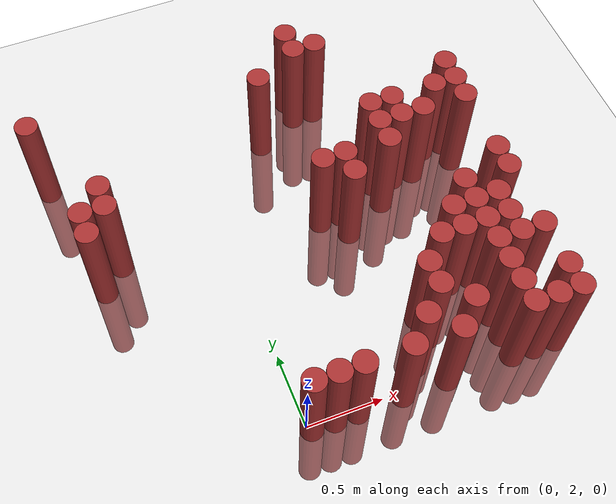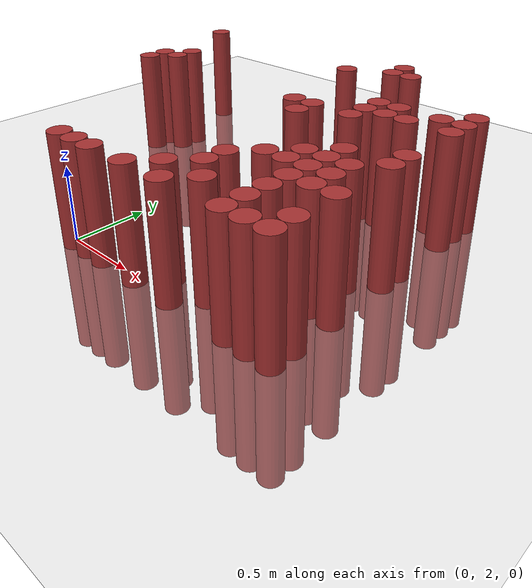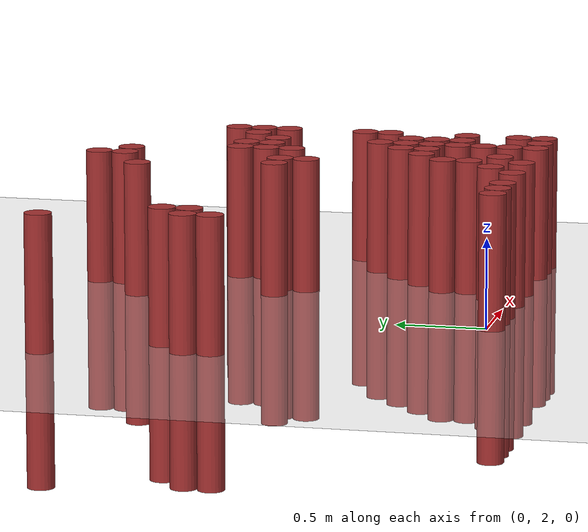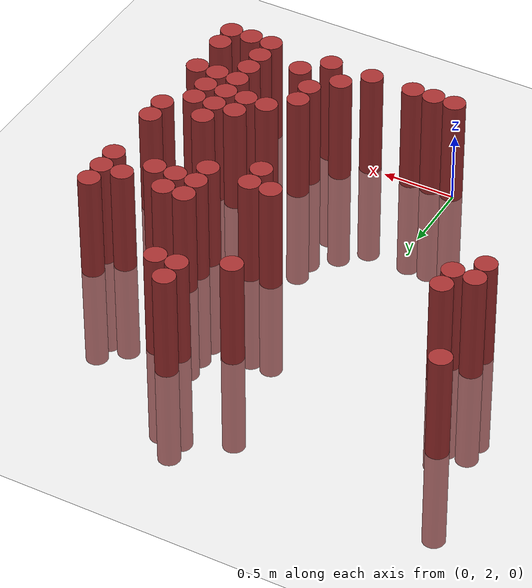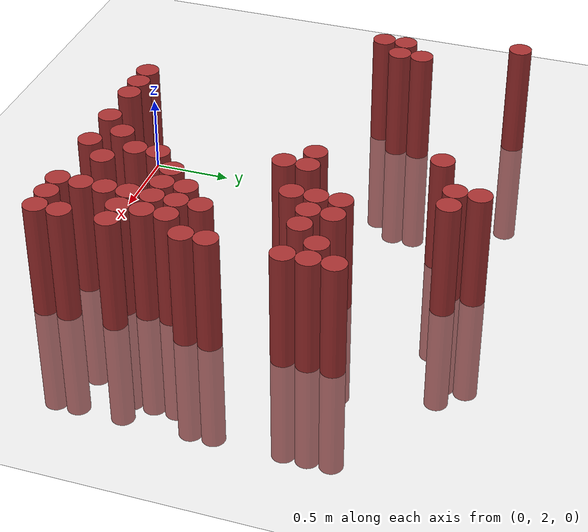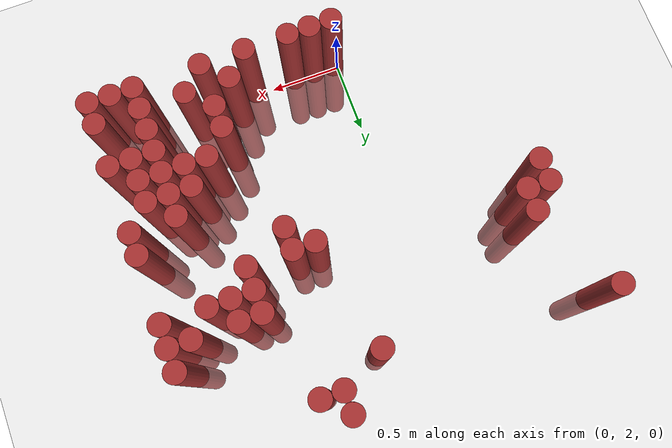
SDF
<sdf version="1.6">
 <world name="default">
  <model name="ground_plane">
   <static>1</static>
   <link name="link">
    <collision name="collision">
     <geometry><plane><normal>0 0 1</normal><size>100 100</size></plane></geometry>
     <surface><friction><ode><mu>100</mu><mu2>50</mu2></ode></friction></surface>
    </collision>
    <visual name="visual">
     <cast_shadows>0</cast_shadows>
     <geometry><plane><normal>0 0 1</normal><size>100 100</size></plane></geometry>
     <material>
      <script><uri>file://media/materials/scripts/gazebo.material</uri><name>Gazebo/Grey</name></script>
     </material>
    </visual>
   </link>
  </model>
  <model name="unit_cylinder_161">
   <static>1</static>
   <pose>-1.025000 4.225000 0.000000 0.000000 0.000000 0.000000</pose>
   <link name="link">
    <inertial>
     <mass>1</mass>
     <inertia><ixx>0.145833</ixx><ixy>0</ixy><ixz>0</ixz><iyy>0.145833</iyy><iyz>0</iyz><izz>0.125</izz></inertia>
    </inertial>
    <collision name="collision">
     <geometry><cylinder><radius>0.075000</radius><length>1.5</length></cylinder></geometry>
    </collision>
    <visual name="visual">
     <geometry><cylinder><radius>0.075000</radius><length>1.5</length></cylinder></geometry>
     <material>
      <ambient>0.648000 0.192000 0.192000 1</ambient>
      <diffuse>0.648000 0.192000 0.192000 1</diffuse>
     </material>
     <material>
      <script><name>Gazebo/Grey</name><uri>file://media/materials/scripts/gazebo.material</uri></script>
     </material>
    </visual>
   </link>
  </model>
  <model name="unit_cylinder_162">
   <static>1</static>
   <pose>-0.875000 3.325000 0.000000 0.000000 0.000000 0.000000</pose>
   <link name="link">
    <inertial>
     <mass>1</mass>
     <inertia><ixx>0.145833</ixx><ixy>0</ixy><ixz>0</ixz><iyy>0.145833</iyy><iyz>0</iyz><izz>0.125</izz></inertia>
    </inertial>
    <collision name="collision">
     <geometry><cylinder><radius>0.075000</radius><length>1.5</length></cylinder></geometry>
    </collision>
    <visual name="visual">
     <geometry><cylinder><radius>0.075000</radius><length>1.5</length></cylinder></geometry>
     <material>
      <ambient>0.648000 0.192000 0.192000 1</ambient>
      <diffuse>0.648000 0.192000 0.192000 1</diffuse>
     </material>
     <material>
      <script><name>Gazebo/Grey</name><uri>file://media/materials/scripts/gazebo.material</uri></script>
     </material>
    </visual>
   </link>
  </model>
  <model name="unit_cylinder_163">
   <static>1</static>
   <pose>-0.875000 3.475000 0.000000 0.000000 0.000000 0.000000</pose>
   <link name="link">
    <inertial>
     <mass>1</mass>
     <inertia><ixx>0.145833</ixx><ixy>0</ixy><ixz>0</ixz><iyy>0.145833</iyy><iyz>0</iyz><izz>0.125</izz></inertia>
    </inertial>
    <collision name="collision">
     <geometry><cylinder><radius>0.075000</radius><length>1.5</length></cylinder></geometry>
    </collision>
    <visual name="visual">
     <geometry><cylinder><radius>0.075000</radius><length>1.5</length></cylinder></geometry>
     <material>
      <ambient>0.648000 0.192000 0.192000 1</ambient>
      <diffuse>0.648000 0.192000 0.192000 1</diffuse>
     </material>
     <material>
      <script><name>Gazebo/Grey</name><uri>file://media/materials/scripts/gazebo.material</uri></script>
     </material>
    </visual>
   </link>
  </model>
  <model name="unit_cylinder_164">
   <static>1</static>
   <pose>-0.725000 3.475000 0.000000 0.000000 0.000000 0.000000</pose>
   <link name="link">
    <inertial>
     <mass>1</mass>
     <inertia><ixx>0.145833</ixx><ixy>0</ixy><ixz>0</ixz><iyy>0.145833</iyy><iyz>0</iyz><izz>0.125</izz></inertia>
    </inertial>
    <collision name="collision">
     <geometry><cylinder><radius>0.075000</radius><length>1.5</length></cylinder></geometry>
    </collision>
    <visual name="visual">
     <geometry><cylinder><radius>0.075000</radius><length>1.5</length></cylinder></geometry>
     <material>
      <ambient>0.648000 0.192000 0.192000 1</ambient>
      <diffuse>0.648000 0.192000 0.192000 1</diffuse>
     </material>
     <material>
      <script><name>Gazebo/Grey</name><uri>file://media/materials/scripts/gazebo.material</uri></script>
     </material>
    </visual>
   </link>
  </model>
  <model name="unit_cylinder_165">
   <static>1</static>
   <pose>-0.725000 3.625000 0.000000 0.000000 0.000000 0.000000</pose>
   <link name="link">
    <inertial>
     <mass>1</mass>
     <inertia><ixx>0.145833</ixx><ixy>0</ixy><ixz>0</ixz><iyy>0.145833</iyy><iyz>0</iyz><izz>0.125</izz></inertia>
    </inertial>
    <collision name="collision">
     <geometry><cylinder><radius>0.075000</radius><length>1.5</length></cylinder></geometry>
    </collision>
    <visual name="visual">
     <geometry><cylinder><radius>0.075000</radius><length>1.5</length></cylinder></geometry>
     <material>
      <ambient>0.648000 0.192000 0.192000 1</ambient>
      <diffuse>0.648000 0.192000 0.192000 1</diffuse>
     </material>
     <material>
      <script><name>Gazebo/Grey</name><uri>file://media/materials/scripts/gazebo.material</uri></script>
     </material>
    </visual>
   </link>
  </model>
  <model name="unit_cylinder_176">
   <static>1</static>
   <pose>0.025000 1.975000 0.000000 0.000000 0.000000 0.000000</pose>
   <link name="link">
    <inertial>
     <mass>1</mass>
     <inertia><ixx>0.145833</ixx><ixy>0</ixy><ixz>0</ixz><iyy>0.145833</iyy><iyz>0</iyz><izz>0.125</izz></inertia>
    </inertial>
    <collision name="collision">
     <geometry><cylinder><radius>0.075000</radius><length>1.5</length></cylinder></geometry>
    </collision>
    <visual name="visual">
     <geometry><cylinder><radius>0.075000</radius><length>1.5</length></cylinder></geometry>
     <material>
      <ambient>0.648000 0.192000 0.192000 1</ambient>
      <diffuse>0.648000 0.192000 0.192000 1</diffuse>
     </material>
     <material>
      <script><name>Gazebo/Grey</name><uri>file://media/materials/scripts/gazebo.material</uri></script>
     </material>
    </visual>
   </link>
  </model>
  <model name="unit_cylinder_179">
   <static>1</static>
   <pose>0.175000 1.975000 0.000000 0.000000 0.000000 0.000000</pose>
   <link name="link">
    <inertial>
     <mass>1</mass>
     <inertia><ixx>0.145833</ixx><ixy>0</ixy><ixz>0</ixz><iyy>0.145833</iyy><iyz>0</iyz><izz>0.125</izz></inertia>
    </inertial>
    <collision name="collision">
     <geometry><cylinder><radius>0.075000</radius><length>1.5</length></cylinder></geometry>
    </collision>
    <visual name="visual">
     <geometry><cylinder><radius>0.075000</radius><length>1.5</length></cylinder></geometry>
     <material>
      <ambient>0.648000 0.192000 0.192000 1</ambient>
      <diffuse>0.648000 0.192000 0.192000 1</diffuse>
     </material>
     <material>
      <script><name>Gazebo/Grey</name><uri>file://media/materials/scripts/gazebo.material</uri></script>
     </material>
    </visual>
   </link>
  </model>
  <model name="unit_cylinder_181">
   <static>1</static>
   <pose>0.325000 1.975000 0.000000 0.000000 0.000000 0.000000</pose>
   <link name="link">
    <inertial>
     <mass>1</mass>
     <inertia><ixx>0.145833</ixx><ixy>0</ixy><ixz>0</ixz><iyy>0.145833</iyy><iyz>0</iyz><izz>0.125</izz></inertia>
    </inertial>
    <collision name="collision">
     <geometry><cylinder><radius>0.075000</radius><length>1.5</length></cylinder></geometry>
    </collision>
    <visual name="visual">
     <geometry><cylinder><radius>0.075000</radius><length>1.5</length></cylinder></geometry>
     <material>
      <ambient>0.648000 0.192000 0.192000 1</ambient>
      <diffuse>0.648000 0.192000 0.192000 1</diffuse>
     </material>
     <material>
      <script><name>Gazebo/Grey</name><uri>file://media/materials/scripts/gazebo.material</uri></script>
     </material>
    </visual>
   </link>
  </model>
  <model name="unit_cylinder_183">
   <static>1</static>
   <pose>0.475000 4.075000 0.000000 0.000000 0.000000 0.000000</pose>
   <link name="link">
    <inertial>
     <mass>1</mass>
     <inertia><ixx>0.145833</ixx><ixy>0</ixy><ixz>0</ixz><iyy>0.145833</iyy><iyz>0</iyz><izz>0.125</izz></inertia>
    </inertial>
    <collision name="collision">
     <geometry><cylinder><radius>0.075000</radius><length>1.5</length></cylinder></geometry>
    </collision>
    <visual name="visual">
     <geometry><cylinder><radius>0.075000</radius><length>1.5</length></cylinder></geometry>
     <material>
      <ambient>0.648000 0.192000 0.192000 1</ambient>
      <diffuse>0.648000 0.192000 0.192000 1</diffuse>
     </material>
     <material>
      <script><name>Gazebo/Grey</name><uri>file://media/materials/scripts/gazebo.material</uri></script>
     </material>
    </visual>
   </link>
  </model>
  <model name="unit_cylinder_184">
   <static>1</static>
   <pose>0.625000 1.975000 0.000000 0.000000 0.000000 0.000000</pose>
   <link name="link">
    <inertial>
     <mass>1</mass>
     <inertia><ixx>0.145833</ixx><ixy>0</ixy><ixz>0</ixz><iyy>0.145833</iyy><iyz>0</iyz><izz>0.125</izz></inertia>
    </inertial>
    <collision name="collision">
     <geometry><cylinder><radius>0.075000</radius><length>1.5</length></cylinder></geometry>
    </collision>
    <visual name="visual">
     <geometry><cylinder><radius>0.075000</radius><length>1.5</length></cylinder></geometry>
     <material>
      <ambient>0.648000 0.192000 0.192000 1</ambient>
      <diffuse>0.648000 0.192000 0.192000 1</diffuse>
     </material>
     <material>
      <script><name>Gazebo/Grey</name><uri>file://media/materials/scripts/gazebo.material</uri></script>
     </material>
    </visual>
   </link>
  </model>
  <model name="unit_cylinder_185">
   <static>1</static>
   <pose>0.625000 3.325000 0.000000 0.000000 0.000000 0.000000</pose>
   <link name="link">
    <inertial>
     <mass>1</mass>
     <inertia><ixx>0.145833</ixx><ixy>0</ixy><ixz>0</ixz><iyy>0.145833</iyy><iyz>0</iyz><izz>0.125</izz></inertia>
    </inertial>
    <collision name="collision">
     <geometry><cylinder><radius>0.075000</radius><length>1.5</length></cylinder></geometry>
    </collision>
    <visual name="visual">
     <geometry><cylinder><radius>0.075000</radius><length>1.5</length></cylinder></geometry>
     <material>
      <ambient>0.648000 0.192000 0.192000 1</ambient>
      <diffuse>0.648000 0.192000 0.192000 1</diffuse>
     </material>
     <material>
      <script><name>Gazebo/Grey</name><uri>file://media/materials/scripts/gazebo.material</uri></script>
     </material>
    </visual>
   </link>
  </model>
  <model name="unit_cylinder_188">
   <static>1</static>
   <pose>0.775000 2.125000 0.000000 0.000000 0.000000 0.000000</pose>
   <link name="link">
    <inertial>
     <mass>1</mass>
     <inertia><ixx>0.145833</ixx><ixy>0</ixy><ixz>0</ixz><iyy>0.145833</iyy><iyz>0</iyz><izz>0.125</izz></inertia>
    </inertial>
    <collision name="collision">
     <geometry><cylinder><radius>0.075000</radius><length>1.5</length></cylinder></geometry>
    </collision>
    <visual name="visual">
     <geometry><cylinder><radius>0.075000</radius><length>1.5</length></cylinder></geometry>
     <material>
      <ambient>0.648000 0.192000 0.192000 1</ambient>
      <diffuse>0.648000 0.192000 0.192000 1</diffuse>
     </material>
     <material>
      <script><name>Gazebo/Grey</name><uri>file://media/materials/scripts/gazebo.material</uri></script>
     </material>
    </visual>
   </link>
  </model>
  <model name="unit_cylinder_189">
   <static>1</static>
   <pose>0.775000 3.175000 0.000000 0.000000 0.000000 0.000000</pose>
   <link name="link">
    <inertial>
     <mass>1</mass>
     <inertia><ixx>0.145833</ixx><ixy>0</ixy><ixz>0</ixz><iyy>0.145833</iyy><iyz>0</iyz><izz>0.125</izz></inertia>
    </inertial>
    <collision name="collision">
     <geometry><cylinder><radius>0.075000</radius><length>1.5</length></cylinder></geometry>
    </collision>
    <visual name="visual">
     <geometry><cylinder><radius>0.075000</radius><length>1.5</length></cylinder></geometry>
     <material>
      <ambient>0.648000 0.192000 0.192000 1</ambient>
      <diffuse>0.648000 0.192000 0.192000 1</diffuse>
     </material>
     <material>
      <script><name>Gazebo/Grey</name><uri>file://media/materials/scripts/gazebo.material</uri></script>
     </material>
    </visual>
   </link>
  </model>
  <model name="unit_cylinder_190">
   <static>1</static>
   <pose>0.775000 3.325000 0.000000 0.000000 0.000000 0.000000</pose>
   <link name="link">
    <inertial>
     <mass>1</mass>
     <inertia><ixx>0.145833</ixx><ixy>0</ixy><ixz>0</ixz><iyy>0.145833</iyy><iyz>0</iyz><izz>0.125</izz></inertia>
    </inertial>
    <collision name="collision">
     <geometry><cylinder><radius>0.075000</radius><length>1.5</length></cylinder></geometry>
    </collision>
    <visual name="visual">
     <geometry><cylinder><radius>0.075000</radius><length>1.5</length></cylinder></geometry>
     <material>
      <ambient>0.648000 0.192000 0.192000 1</ambient>
      <diffuse>0.648000 0.192000 0.192000 1</diffuse>
     </material>
     <material>
      <script><name>Gazebo/Grey</name><uri>file://media/materials/scripts/gazebo.material</uri></script>
     </material>
    </visual>
   </link>
  </model>
  <model name="unit_cylinder_191">
   <static>1</static>
   <pose>0.775000 4.225000 0.000000 0.000000 0.000000 0.000000</pose>
   <link name="link">
    <inertial>
     <mass>1</mass>
     <inertia><ixx>0.145833</ixx><ixy>0</ixy><ixz>0</ixz><iyy>0.145833</iyy><iyz>0</iyz><izz>0.125</izz></inertia>
    </inertial>
    <collision name="collision">
     <geometry><cylinder><radius>0.075000</radius><length>1.5</length></cylinder></geometry>
    </collision>
    <visual name="visual">
     <geometry><cylinder><radius>0.075000</radius><length>1.5</length></cylinder></geometry>
     <material>
      <ambient>0.648000 0.192000 0.192000 1</ambient>
      <diffuse>0.648000 0.192000 0.192000 1</diffuse>
     </material>
     <material>
      <script><name>Gazebo/Grey</name><uri>file://media/materials/scripts/gazebo.material</uri></script>
     </material>
    </visual>
   </link>
  </model>
  <model name="unit_cylinder_192">
   <static>1</static>
   <pose>0.775000 4.375000 0.000000 0.000000 0.000000 0.000000</pose>
   <link name="link">
    <inertial>
     <mass>1</mass>
     <inertia><ixx>0.145833</ixx><ixy>0</ixy><ixz>0</ixz><iyy>0.145833</iyy><iyz>0</iyz><izz>0.125</izz></inertia>
    </inertial>
    <collision name="collision">
     <geometry><cylinder><radius>0.075000</radius><length>1.5</length></cylinder></geometry>
    </collision>
    <visual name="visual">
     <geometry><cylinder><radius>0.075000</radius><length>1.5</length></cylinder></geometry>
     <material>
      <ambient>0.648000 0.192000 0.192000 1</ambient>
      <diffuse>0.648000 0.192000 0.192000 1</diffuse>
     </material>
     <material>
      <script><name>Gazebo/Grey</name><uri>file://media/materials/scripts/gazebo.material</uri></script>
     </material>
    </visual>
   </link>
  </model>
  <model name="unit_cylinder_194">
   <static>1</static>
   <pose>0.925000 1.975000 0.000000 0.000000 0.000000 0.000000</pose>
   <link name="link">
    <inertial>
     <mass>1</mass>
     <inertia><ixx>0.145833</ixx><ixy>0</ixy><ixz>0</ixz><iyy>0.145833</iyy><iyz>0</iyz><izz>0.125</izz></inertia>
    </inertial>
    <collision name="collision">
     <geometry><cylinder><radius>0.075000</radius><length>1.5</length></cylinder></geometry>
    </collision>
    <visual name="visual">
     <geometry><cylinder><radius>0.075000</radius><length>1.5</length></cylinder></geometry>
     <material>
      <ambient>0.648000 0.192000 0.192000 1</ambient>
      <diffuse>0.648000 0.192000 0.192000 1</diffuse>
     </material>
     <material>
      <script><name>Gazebo/Grey</name><uri>file://media/materials/scripts/gazebo.material</uri></script>
     </material>
    </visual>
   </link>
  </model>
  <model name="unit_cylinder_195">
   <static>1</static>
   <pose>0.925000 2.275000 0.000000 0.000000 0.000000 0.000000</pose>
   <link name="link">
    <inertial>
     <mass>1</mass>
     <inertia><ixx>0.145833</ixx><ixy>0</ixy><ixz>0</ixz><iyy>0.145833</iyy><iyz>0</iyz><izz>0.125</izz></inertia>
    </inertial>
    <collision name="collision">
     <geometry><cylinder><radius>0.075000</radius><length>1.5</length></cylinder></geometry>
    </collision>
    <visual name="visual">
     <geometry><cylinder><radius>0.075000</radius><length>1.5</length></cylinder></geometry>
     <material>
      <ambient>0.648000 0.192000 0.192000 1</ambient>
      <diffuse>0.648000 0.192000 0.192000 1</diffuse>
     </material>
     <material>
      <script><name>Gazebo/Grey</name><uri>file://media/materials/scripts/gazebo.material</uri></script>
     </material>
    </visual>
   </link>
  </model>
  <model name="unit_cylinder_196">
   <static>1</static>
   <pose>0.925000 2.425000 0.000000 0.000000 0.000000 0.000000</pose>
   <link name="link">
    <inertial>
     <mass>1</mass>
     <inertia><ixx>0.145833</ixx><ixy>0</ixy><ixz>0</ixz><iyy>0.145833</iyy><iyz>0</iyz><izz>0.125</izz></inertia>
    </inertial>
    <collision name="collision">
     <geometry><cylinder><radius>0.075000</radius><length>1.5</length></cylinder></geometry>
    </collision>
    <visual name="visual">
     <geometry><cylinder><radius>0.075000</radius><length>1.5</length></cylinder></geometry>
     <material>
      <ambient>0.648000 0.192000 0.192000 1</ambient>
      <diffuse>0.648000 0.192000 0.192000 1</diffuse>
     </material>
     <material>
      <script><name>Gazebo/Grey</name><uri>file://media/materials/scripts/gazebo.material</uri></script>
     </material>
    </visual>
   </link>
  </model>
  <model name="unit_cylinder_197">
   <static>1</static>
   <pose>0.925000 4.225000 0.000000 0.000000 0.000000 0.000000</pose>
   <link name="link">
    <inertial>
     <mass>1</mass>
     <inertia><ixx>0.145833</ixx><ixy>0</ixy><ixz>0</ixz><iyy>0.145833</iyy><iyz>0</iyz><izz>0.125</izz></inertia>
    </inertial>
    <collision name="collision">
     <geometry><cylinder><radius>0.075000</radius><length>1.5</length></cylinder></geometry>
    </collision>
    <visual name="visual">
     <geometry><cylinder><radius>0.075000</radius><length>1.5</length></cylinder></geometry>
     <material>
      <ambient>0.648000 0.192000 0.192000 1</ambient>
      <diffuse>0.648000 0.192000 0.192000 1</diffuse>
     </material>
     <material>
      <script><name>Gazebo/Grey</name><uri>file://media/materials/scripts/gazebo.material</uri></script>
     </material>
    </visual>
   </link>
  </model>
  <model name="unit_cylinder_198">
   <static>1</static>
   <pose>1.075000 2.125000 0.000000 0.000000 0.000000 0.000000</pose>
   <link name="link">
    <inertial>
     <mass>1</mass>
     <inertia><ixx>0.145833</ixx><ixy>0</ixy><ixz>0</ixz><iyy>0.145833</iyy><iyz>0</iyz><izz>0.125</izz></inertia>
    </inertial>
    <collision name="collision">
     <geometry><cylinder><radius>0.075000</radius><length>1.5</length></cylinder></geometry>
    </collision>
    <visual name="visual">
     <geometry><cylinder><radius>0.075000</radius><length>1.5</length></cylinder></geometry>
     <material>
      <ambient>0.648000 0.192000 0.192000 1</ambient>
      <diffuse>0.648000 0.192000 0.192000 1</diffuse>
     </material>
     <material>
      <script><name>Gazebo/Grey</name><uri>file://media/materials/scripts/gazebo.material</uri></script>
     </material>
    </visual>
   </link>
  </model>
  <model name="unit_cylinder_199">
   <static>1</static>
   <pose>1.075000 2.575000 0.000000 0.000000 0.000000 0.000000</pose>
   <link name="link">
    <inertial>
     <mass>1</mass>
     <inertia><ixx>0.145833</ixx><ixy>0</ixy><ixz>0</ixz><iyy>0.145833</iyy><iyz>0</iyz><izz>0.125</izz></inertia>
    </inertial>
    <collision name="collision">
     <geometry><cylinder><radius>0.075000</radius><length>1.5</length></cylinder></geometry>
    </collision>
    <visual name="visual">
     <geometry><cylinder><radius>0.075000</radius><length>1.5</length></cylinder></geometry>
     <material>
      <ambient>0.648000 0.192000 0.192000 1</ambient>
      <diffuse>0.648000 0.192000 0.192000 1</diffuse>
     </material>
     <material>
      <script><name>Gazebo/Grey</name><uri>file://media/materials/scripts/gazebo.material</uri></script>
     </material>
    </visual>
   </link>
  </model>
  <model name="unit_cylinder_200">
   <static>1</static>
   <pose>1.075000 3.325000 0.000000 0.000000 0.000000 0.000000</pose>
   <link name="link">
    <inertial>
     <mass>1</mass>
     <inertia><ixx>0.145833</ixx><ixy>0</ixy><ixz>0</ixz><iyy>0.145833</iyy><iyz>0</iyz><izz>0.125</izz></inertia>
    </inertial>
    <collision name="collision">
     <geometry><cylinder><radius>0.075000</radius><length>1.5</length></cylinder></geometry>
    </collision>
    <visual name="visual">
     <geometry><cylinder><radius>0.075000</radius><length>1.5</length></cylinder></geometry>
     <material>
      <ambient>0.648000 0.192000 0.192000 1</ambient>
      <diffuse>0.648000 0.192000 0.192000 1</diffuse>
     </material>
     <material>
      <script><name>Gazebo/Grey</name><uri>file://media/materials/scripts/gazebo.material</uri></script>
     </material>
    </visual>
   </link>
  </model>
  <model name="unit_cylinder_201">
   <static>1</static>
   <pose>1.075000 3.475000 0.000000 0.000000 0.000000 0.000000</pose>
   <link name="link">
    <inertial>
     <mass>1</mass>
     <inertia><ixx>0.145833</ixx><ixy>0</ixy><ixz>0</ixz><iyy>0.145833</iyy><iyz>0</iyz><izz>0.125</izz></inertia>
    </inertial>
    <collision name="collision">
     <geometry><cylinder><radius>0.075000</radius><length>1.5</length></cylinder></geometry>
    </collision>
    <visual name="visual">
     <geometry><cylinder><radius>0.075000</radius><length>1.5</length></cylinder></geometry>
     <material>
      <ambient>0.648000 0.192000 0.192000 1</ambient>
      <diffuse>0.648000 0.192000 0.192000 1</diffuse>
     </material>
     <material>
      <script><name>Gazebo/Grey</name><uri>file://media/materials/scripts/gazebo.material</uri></script>
     </material>
    </visual>
   </link>
  </model>
  <model name="unit_cylinder_202">
   <static>1</static>
   <pose>1.075000 3.625000 0.000000 0.000000 0.000000 0.000000</pose>
   <link name="link">
    <inertial>
     <mass>1</mass>
     <inertia><ixx>0.145833</ixx><ixy>0</ixy><ixz>0</ixz><iyy>0.145833</iyy><iyz>0</iyz><izz>0.125</izz></inertia>
    </inertial>
    <collision name="collision">
     <geometry><cylinder><radius>0.075000</radius><length>1.5</length></cylinder></geometry>
    </collision>
    <visual name="visual">
     <geometry><cylinder><radius>0.075000</radius><length>1.5</length></cylinder></geometry>
     <material>
      <ambient>0.648000 0.192000 0.192000 1</ambient>
      <diffuse>0.648000 0.192000 0.192000 1</diffuse>
     </material>
     <material>
      <script><name>Gazebo/Grey</name><uri>file://media/materials/scripts/gazebo.material</uri></script>
     </material>
    </visual>
   </link>
  </model>
  <model name="unit_cylinder_203">
   <static>1</static>
   <pose>1.225000 2.575000 0.000000 0.000000 0.000000 0.000000</pose>
   <link name="link">
    <inertial>
     <mass>1</mass>
     <inertia><ixx>0.145833</ixx><ixy>0</ixy><ixz>0</ixz><iyy>0.145833</iyy><iyz>0</iyz><izz>0.125</izz></inertia>
    </inertial>
    <collision name="collision">
     <geometry><cylinder><radius>0.075000</radius><length>1.5</length></cylinder></geometry>
    </collision>
    <visual name="visual">
     <geometry><cylinder><radius>0.075000</radius><length>1.5</length></cylinder></geometry>
     <material>
      <ambient>0.648000 0.192000 0.192000 1</ambient>
      <diffuse>0.648000 0.192000 0.192000 1</diffuse>
     </material>
     <material>
      <script><name>Gazebo/Grey</name><uri>file://media/materials/scripts/gazebo.material</uri></script>
     </material>
    </visual>
   </link>
  </model>
  <model name="unit_cylinder_204">
   <static>1</static>
   <pose>1.225000 2.725000 0.000000 0.000000 0.000000 0.000000</pose>
   <link name="link">
    <inertial>
     <mass>1</mass>
     <inertia><ixx>0.145833</ixx><ixy>0</ixy><ixz>0</ixz><iyy>0.145833</iyy><iyz>0</iyz><izz>0.125</izz></inertia>
    </inertial>
    <collision name="collision">
     <geometry><cylinder><radius>0.075000</radius><length>1.5</length></cylinder></geometry>
    </collision>
    <visual name="visual">
     <geometry><cylinder><radius>0.075000</radius><length>1.5</length></cylinder></geometry>
     <material>
      <ambient>0.648000 0.192000 0.192000 1</ambient>
      <diffuse>0.648000 0.192000 0.192000 1</diffuse>
     </material>
     <material>
      <script><name>Gazebo/Grey</name><uri>file://media/materials/scripts/gazebo.material</uri></script>
     </material>
    </visual>
   </link>
  </model>
  <model name="unit_cylinder_205">
   <static>1</static>
   <pose>1.225000 3.475000 0.000000 0.000000 0.000000 0.000000</pose>
   <link name="link">
    <inertial>
     <mass>1</mass>
     <inertia><ixx>0.145833</ixx><ixy>0</ixy><ixz>0</ixz><iyy>0.145833</iyy><iyz>0</iyz><izz>0.125</izz></inertia>
    </inertial>
    <collision name="collision">
     <geometry><cylinder><radius>0.075000</radius><length>1.5</length></cylinder></geometry>
    </collision>
    <visual name="visual">
     <geometry><cylinder><radius>0.075000</radius><length>1.5</length></cylinder></geometry>
     <material>
      <ambient>0.648000 0.192000 0.192000 1</ambient>
      <diffuse>0.648000 0.192000 0.192000 1</diffuse>
     </material>
     <material>
      <script><name>Gazebo/Grey</name><uri>file://media/materials/scripts/gazebo.material</uri></script>
     </material>
    </visual>
   </link>
  </model>
  <model name="unit_cylinder_206">
   <static>1</static>
   <pose>1.225000 3.625000 0.000000 0.000000 0.000000 0.000000</pose>
   <link name="link">
    <inertial>
     <mass>1</mass>
     <inertia><ixx>0.145833</ixx><ixy>0</ixy><ixz>0</ixz><iyy>0.145833</iyy><iyz>0</iyz><izz>0.125</izz></inertia>
    </inertial>
    <collision name="collision">
     <geometry><cylinder><radius>0.075000</radius><length>1.5</length></cylinder></geometry>
    </collision>
    <visual name="visual">
     <geometry><cylinder><radius>0.075000</radius><length>1.5</length></cylinder></geometry>
     <material>
      <ambient>0.648000 0.192000 0.192000 1</ambient>
      <diffuse>0.648000 0.192000 0.192000 1</diffuse>
     </material>
     <material>
      <script><name>Gazebo/Grey</name><uri>file://media/materials/scripts/gazebo.material</uri></script>
     </material>
    </visual>
   </link>
  </model>
  <model name="unit_cylinder_208">
   <static>1</static>
   <pose>1.375000 1.975000 0.000000 0.000000 0.000000 0.000000</pose>
   <link name="link">
    <inertial>
     <mass>1</mass>
     <inertia><ixx>0.145833</ixx><ixy>0</ixy><ixz>0</ixz><iyy>0.145833</iyy><iyz>0</iyz><izz>0.125</izz></inertia>
    </inertial>
    <collision name="collision">
     <geometry><cylinder><radius>0.075000</radius><length>1.5</length></cylinder></geometry>
    </collision>
    <visual name="visual">
     <geometry><cylinder><radius>0.075000</radius><length>1.5</length></cylinder></geometry>
     <material>
      <ambient>0.648000 0.192000 0.192000 1</ambient>
      <diffuse>0.648000 0.192000 0.192000 1</diffuse>
     </material>
     <material>
      <script><name>Gazebo/Grey</name><uri>file://media/materials/scripts/gazebo.material</uri></script>
     </material>
    </visual>
   </link>
  </model>
  <model name="unit_cylinder_209">
   <static>1</static>
   <pose>1.375000 2.125000 0.000000 0.000000 0.000000 0.000000</pose>
   <link name="link">
    <inertial>
     <mass>1</mass>
     <inertia><ixx>0.145833</ixx><ixy>0</ixy><ixz>0</ixz><iyy>0.145833</iyy><iyz>0</iyz><izz>0.125</izz></inertia>
    </inertial>
    <collision name="collision">
     <geometry><cylinder><radius>0.075000</radius><length>1.5</length></cylinder></geometry>
    </collision>
    <visual name="visual">
     <geometry><cylinder><radius>0.075000</radius><length>1.5</length></cylinder></geometry>
     <material>
      <ambient>0.648000 0.192000 0.192000 1</ambient>
      <diffuse>0.648000 0.192000 0.192000 1</diffuse>
     </material>
     <material>
      <script><name>Gazebo/Grey</name><uri>file://media/materials/scripts/gazebo.material</uri></script>
     </material>
    </visual>
   </link>
  </model>
  <model name="unit_cylinder_210">
   <static>1</static>
   <pose>1.375000 2.275000 0.000000 0.000000 0.000000 0.000000</pose>
   <link name="link">
    <inertial>
     <mass>1</mass>
     <inertia><ixx>0.145833</ixx><ixy>0</ixy><ixz>0</ixz><iyy>0.145833</iyy><iyz>0</iyz><izz>0.125</izz></inertia>
    </inertial>
    <collision name="collision">
     <geometry><cylinder><radius>0.075000</radius><length>1.5</length></cylinder></geometry>
    </collision>
    <visual name="visual">
     <geometry><cylinder><radius>0.075000</radius><length>1.5</length></cylinder></geometry>
     <material>
      <ambient>0.648000 0.192000 0.192000 1</ambient>
      <diffuse>0.648000 0.192000 0.192000 1</diffuse>
     </material>
     <material>
      <script><name>Gazebo/Grey</name><uri>file://media/materials/scripts/gazebo.material</uri></script>
     </material>
    </visual>
   </link>
  </model>
  <model name="unit_cylinder_211">
   <static>1</static>
   <pose>1.375000 2.425000 0.000000 0.000000 0.000000 0.000000</pose>
   <link name="link">
    <inertial>
     <mass>1</mass>
     <inertia><ixx>0.145833</ixx><ixy>0</ixy><ixz>0</ixz><iyy>0.145833</iyy><iyz>0</iyz><izz>0.125</izz></inertia>
    </inertial>
    <collision name="collision">
     <geometry><cylinder><radius>0.075000</radius><length>1.5</length></cylinder></geometry>
    </collision>
    <visual name="visual">
     <geometry><cylinder><radius>0.075000</radius><length>1.5</length></cylinder></geometry>
     <material>
      <ambient>0.648000 0.192000 0.192000 1</ambient>
      <diffuse>0.648000 0.192000 0.192000 1</diffuse>
     </material>
     <material>
      <script><name>Gazebo/Grey</name><uri>file://media/materials/scripts/gazebo.material</uri></script>
     </material>
    </visual>
   </link>
  </model>
  <model name="unit_cylinder_212">
   <static>1</static>
   <pose>1.375000 2.575000 0.000000 0.000000 0.000000 0.000000</pose>
   <link name="link">
    <inertial>
     <mass>1</mass>
     <inertia><ixx>0.145833</ixx><ixy>0</ixy><ixz>0</ixz><iyy>0.145833</iyy><iyz>0</iyz><izz>0.125</izz></inertia>
    </inertial>
    <collision name="collision">
     <geometry><cylinder><radius>0.075000</radius><length>1.5</length></cylinder></geometry>
    </collision>
    <visual name="visual">
     <geometry><cylinder><radius>0.075000</radius><length>1.5</length></cylinder></geometry>
     <material>
      <ambient>0.648000 0.192000 0.192000 1</ambient>
      <diffuse>0.648000 0.192000 0.192000 1</diffuse>
     </material>
     <material>
      <script><name>Gazebo/Grey</name><uri>file://media/materials/scripts/gazebo.material</uri></script>
     </material>
    </visual>
   </link>
  </model>
  <model name="unit_cylinder_213">
   <static>1</static>
   <pose>1.375000 2.725000 0.000000 0.000000 0.000000 0.000000</pose>
   <link name="link">
    <inertial>
     <mass>1</mass>
     <inertia><ixx>0.145833</ixx><ixy>0</ixy><ixz>0</ixz><iyy>0.145833</iyy><iyz>0</iyz><izz>0.125</izz></inertia>
    </inertial>
    <collision name="collision">
     <geometry><cylinder><radius>0.075000</radius><length>1.5</length></cylinder></geometry>
    </collision>
    <visual name="visual">
     <geometry><cylinder><radius>0.075000</radius><length>1.5</length></cylinder></geometry>
     <material>
      <ambient>0.648000 0.192000 0.192000 1</ambient>
      <diffuse>0.648000 0.192000 0.192000 1</diffuse>
     </material>
     <material>
      <script><name>Gazebo/Grey</name><uri>file://media/materials/scripts/gazebo.material</uri></script>
     </material>
    </visual>
   </link>
  </model>
  <model name="unit_cylinder_214">
   <static>1</static>
   <pose>1.375000 2.875000 0.000000 0.000000 0.000000 0.000000</pose>
   <link name="link">
    <inertial>
     <mass>1</mass>
     <inertia><ixx>0.145833</ixx><ixy>0</ixy><ixz>0</ixz><iyy>0.145833</iyy><iyz>0</iyz><izz>0.125</izz></inertia>
    </inertial>
    <collision name="collision">
     <geometry><cylinder><radius>0.075000</radius><length>1.5</length></cylinder></geometry>
    </collision>
    <visual name="visual">
     <geometry><cylinder><radius>0.075000</radius><length>1.5</length></cylinder></geometry>
     <material>
      <ambient>0.648000 0.192000 0.192000 1</ambient>
      <diffuse>0.648000 0.192000 0.192000 1</diffuse>
     </material>
     <material>
      <script><name>Gazebo/Grey</name><uri>file://media/materials/scripts/gazebo.material</uri></script>
     </material>
    </visual>
   </link>
  </model>
  <model name="unit_cylinder_215">
   <static>1</static>
   <pose>1.375000 3.475000 0.000000 0.000000 0.000000 0.000000</pose>
   <link name="link">
    <inertial>
     <mass>1</mass>
     <inertia><ixx>0.145833</ixx><ixy>0</ixy><ixz>0</ixz><iyy>0.145833</iyy><iyz>0</iyz><izz>0.125</izz></inertia>
    </inertial>
    <collision name="collision">
     <geometry><cylinder><radius>0.075000</radius><length>1.5</length></cylinder></geometry>
    </collision>
    <visual name="visual">
     <geometry><cylinder><radius>0.075000</radius><length>1.5</length></cylinder></geometry>
     <material>
      <ambient>0.648000 0.192000 0.192000 1</ambient>
      <diffuse>0.648000 0.192000 0.192000 1</diffuse>
     </material>
     <material>
      <script><name>Gazebo/Grey</name><uri>file://media/materials/scripts/gazebo.material</uri></script>
     </material>
    </visual>
   </link>
  </model>
  <model name="unit_cylinder_219">
   <static>1</static>
   <pose>1.525000 1.975000 0.000000 0.000000 0.000000 0.000000</pose>
   <link name="link">
    <inertial>
     <mass>1</mass>
     <inertia><ixx>0.145833</ixx><ixy>0</ixy><ixz>0</ixz><iyy>0.145833</iyy><iyz>0</iyz><izz>0.125</izz></inertia>
    </inertial>
    <collision name="collision">
     <geometry><cylinder><radius>0.075000</radius><length>1.5</length></cylinder></geometry>
    </collision>
    <visual name="visual">
     <geometry><cylinder><radius>0.075000</radius><length>1.5</length></cylinder></geometry>
     <material>
      <ambient>0.648000 0.192000 0.192000 1</ambient>
      <diffuse>0.648000 0.192000 0.192000 1</diffuse>
     </material>
     <material>
      <script><name>Gazebo/Grey</name><uri>file://media/materials/scripts/gazebo.material</uri></script>
     </material>
    </visual>
   </link>
  </model>
  <model name="unit_cylinder_220">
   <static>1</static>
   <pose>1.525000 2.425000 0.000000 0.000000 0.000000 0.000000</pose>
   <link name="link">
    <inertial>
     <mass>1</mass>
     <inertia><ixx>0.145833</ixx><ixy>0</ixy><ixz>0</ixz><iyy>0.145833</iyy><iyz>0</iyz><izz>0.125</izz></inertia>
    </inertial>
    <collision name="collision">
     <geometry><cylinder><radius>0.075000</radius><length>1.5</length></cylinder></geometry>
    </collision>
    <visual name="visual">
     <geometry><cylinder><radius>0.075000</radius><length>1.5</length></cylinder></geometry>
     <material>
      <ambient>0.648000 0.192000 0.192000 1</ambient>
      <diffuse>0.648000 0.192000 0.192000 1</diffuse>
     </material>
     <material>
      <script><name>Gazebo/Grey</name><uri>file://media/materials/scripts/gazebo.material</uri></script>
     </material>
    </visual>
   </link>
  </model>
  <model name="unit_cylinder_221">
   <static>1</static>
   <pose>1.525000 2.575000 0.000000 0.000000 0.000000 0.000000</pose>
   <link name="link">
    <inertial>
     <mass>1</mass>
     <inertia><ixx>0.145833</ixx><ixy>0</ixy><ixz>0</ixz><iyy>0.145833</iyy><iyz>0</iyz><izz>0.125</izz></inertia>
    </inertial>
    <collision name="collision">
     <geometry><cylinder><radius>0.075000</radius><length>1.5</length></cylinder></geometry>
    </collision>
    <visual name="visual">
     <geometry><cylinder><radius>0.075000</radius><length>1.5</length></cylinder></geometry>
     <material>
      <ambient>0.648000 0.192000 0.192000 1</ambient>
      <diffuse>0.648000 0.192000 0.192000 1</diffuse>
     </material>
     <material>
      <script><name>Gazebo/Grey</name><uri>file://media/materials/scripts/gazebo.material</uri></script>
     </material>
    </visual>
   </link>
  </model>
  <model name="unit_cylinder_222">
   <static>1</static>
   <pose>1.525000 2.725000 0.000000 0.000000 0.000000 0.000000</pose>
   <link name="link">
    <inertial>
     <mass>1</mass>
     <inertia><ixx>0.145833</ixx><ixy>0</ixy><ixz>0</ixz><iyy>0.145833</iyy><iyz>0</iyz><izz>0.125</izz></inertia>
    </inertial>
    <collision name="collision">
     <geometry><cylinder><radius>0.075000</radius><length>1.5</length></cylinder></geometry>
    </collision>
    <visual name="visual">
     <geometry><cylinder><radius>0.075000</radius><length>1.5</length></cylinder></geometry>
     <material>
      <ambient>0.648000 0.192000 0.192000 1</ambient>
      <diffuse>0.648000 0.192000 0.192000 1</diffuse>
     </material>
     <material>
      <script><name>Gazebo/Grey</name><uri>file://media/materials/scripts/gazebo.material</uri></script>
     </material>
    </visual>
   </link>
  </model>
  <model name="unit_cylinder_223">
   <static>1</static>
   <pose>1.525000 3.625000 0.000000 0.000000 0.000000 0.000000</pose>
   <link name="link">
    <inertial>
     <mass>1</mass>
     <inertia><ixx>0.145833</ixx><ixy>0</ixy><ixz>0</ixz><iyy>0.145833</iyy><iyz>0</iyz><izz>0.125</izz></inertia>
    </inertial>
    <collision name="collision">
     <geometry><cylinder><radius>0.075000</radius><length>1.5</length></cylinder></geometry>
    </collision>
    <visual name="visual">
     <geometry><cylinder><radius>0.075000</radius><length>1.5</length></cylinder></geometry>
     <material>
      <ambient>0.648000 0.192000 0.192000 1</ambient>
      <diffuse>0.648000 0.192000 0.192000 1</diffuse>
     </material>
     <material>
      <script><name>Gazebo/Grey</name><uri>file://media/materials/scripts/gazebo.material</uri></script>
     </material>
    </visual>
   </link>
  </model>
  <model name="unit_cylinder_226">
   <static>1</static>
   <pose>1.675000 1.975000 0.000000 0.000000 0.000000 0.000000</pose>
   <link name="link">
    <inertial>
     <mass>1</mass>
     <inertia><ixx>0.145833</ixx><ixy>0</ixy><ixz>0</ixz><iyy>0.145833</iyy><iyz>0</iyz><izz>0.125</izz></inertia>
    </inertial>
    <collision name="collision">
     <geometry><cylinder><radius>0.075000</radius><length>1.5</length></cylinder></geometry>
    </collision>
    <visual name="visual">
     <geometry><cylinder><radius>0.075000</radius><length>1.5</length></cylinder></geometry>
     <material>
      <ambient>0.648000 0.192000 0.192000 1</ambient>
      <diffuse>0.648000 0.192000 0.192000 1</diffuse>
     </material>
     <material>
      <script><name>Gazebo/Grey</name><uri>file://media/materials/scripts/gazebo.material</uri></script>
     </material>
    </visual>
   </link>
  </model>
  <model name="unit_cylinder_227">
   <static>1</static>
   <pose>1.675000 2.125000 0.000000 0.000000 0.000000 0.000000</pose>
   <link name="link">
    <inertial>
     <mass>1</mass>
     <inertia><ixx>0.145833</ixx><ixy>0</ixy><ixz>0</ixz><iyy>0.145833</iyy><iyz>0</iyz><izz>0.125</izz></inertia>
    </inertial>
    <collision name="collision">
     <geometry><cylinder><radius>0.075000</radius><length>1.5</length></cylinder></geometry>
    </collision>
    <visual name="visual">
     <geometry><cylinder><radius>0.075000</radius><length>1.5</length></cylinder></geometry>
     <material>
      <ambient>0.648000 0.192000 0.192000 1</ambient>
      <diffuse>0.648000 0.192000 0.192000 1</diffuse>
     </material>
     <material>
      <script><name>Gazebo/Grey</name><uri>file://media/materials/scripts/gazebo.material</uri></script>
     </material>
    </visual>
   </link>
  </model>
  <model name="unit_cylinder_228">
   <static>1</static>
   <pose>1.675000 2.425000 0.000000 0.000000 0.000000 0.000000</pose>
   <link name="link">
    <inertial>
     <mass>1</mass>
     <inertia><ixx>0.145833</ixx><ixy>0</ixy><ixz>0</ixz><iyy>0.145833</iyy><iyz>0</iyz><izz>0.125</izz></inertia>
    </inertial>
    <collision name="collision">
     <geometry><cylinder><radius>0.075000</radius><length>1.5</length></cylinder></geometry>
    </collision>
    <visual name="visual">
     <geometry><cylinder><radius>0.075000</radius><length>1.5</length></cylinder></geometry>
     <material>
      <ambient>0.648000 0.192000 0.192000 1</ambient>
      <diffuse>0.648000 0.192000 0.192000 1</diffuse>
     </material>
     <material>
      <script><name>Gazebo/Grey</name><uri>file://media/materials/scripts/gazebo.material</uri></script>
     </material>
    </visual>
   </link>
  </model>
  <model name="unit_cylinder_229">
   <static>1</static>
   <pose>1.675000 2.875000 0.000000 0.000000 0.000000 0.000000</pose>
   <link name="link">
    <inertial>
     <mass>1</mass>
     <inertia><ixx>0.145833</ixx><ixy>0</ixy><ixz>0</ixz><iyy>0.145833</iyy><iyz>0</iyz><izz>0.125</izz></inertia>
    </inertial>
    <collision name="collision">
     <geometry><cylinder><radius>0.075000</radius><length>1.5</length></cylinder></geometry>
    </collision>
    <visual name="visual">
     <geometry><cylinder><radius>0.075000</radius><length>1.5</length></cylinder></geometry>
     <material>
      <ambient>0.648000 0.192000 0.192000 1</ambient>
      <diffuse>0.648000 0.192000 0.192000 1</diffuse>
     </material>
     <material>
      <script><name>Gazebo/Grey</name><uri>file://media/materials/scripts/gazebo.material</uri></script>
     </material>
    </visual>
   </link>
  </model>
  <model name="unit_cylinder_230">
   <static>1</static>
   <pose>1.675000 3.025000 0.000000 0.000000 0.000000 0.000000</pose>
   <link name="link">
    <inertial>
     <mass>1</mass>
     <inertia><ixx>0.145833</ixx><ixy>0</ixy><ixz>0</ixz><iyy>0.145833</iyy><iyz>0</iyz><izz>0.125</izz></inertia>
    </inertial>
    <collision name="collision">
     <geometry><cylinder><radius>0.075000</radius><length>1.5</length></cylinder></geometry>
    </collision>
    <visual name="visual">
     <geometry><cylinder><radius>0.075000</radius><length>1.5</length></cylinder></geometry>
     <material>
      <ambient>0.648000 0.192000 0.192000 1</ambient>
      <diffuse>0.648000 0.192000 0.192000 1</diffuse>
     </material>
     <material>
      <script><name>Gazebo/Grey</name><uri>file://media/materials/scripts/gazebo.material</uri></script>
     </material>
    </visual>
   </link>
  </model>
  <model name="unit_cylinder_231">
   <static>1</static>
   <pose>1.675000 3.475000 0.000000 0.000000 0.000000 0.000000</pose>
   <link name="link">
    <inertial>
     <mass>1</mass>
     <inertia><ixx>0.145833</ixx><ixy>0</ixy><ixz>0</ixz><iyy>0.145833</iyy><iyz>0</iyz><izz>0.125</izz></inertia>
    </inertial>
    <collision name="collision">
     <geometry><cylinder><radius>0.075000</radius><length>1.5</length></cylinder></geometry>
    </collision>
    <visual name="visual">
     <geometry><cylinder><radius>0.075000</radius><length>1.5</length></cylinder></geometry>
     <material>
      <ambient>0.648000 0.192000 0.192000 1</ambient>
      <diffuse>0.648000 0.192000 0.192000 1</diffuse>
     </material>
     <material>
      <script><name>Gazebo/Grey</name><uri>file://media/materials/scripts/gazebo.material</uri></script>
     </material>
    </visual>
   </link>
  </model>
  <model name="unit_cylinder_232">
   <static>1</static>
   <pose>1.675000 3.625000 0.000000 0.000000 0.000000 0.000000</pose>
   <link name="link">
    <inertial>
     <mass>1</mass>
     <inertia><ixx>0.145833</ixx><ixy>0</ixy><ixz>0</ixz><iyy>0.145833</iyy><iyz>0</iyz><izz>0.125</izz></inertia>
    </inertial>
    <collision name="collision">
     <geometry><cylinder><radius>0.075000</radius><length>1.5</length></cylinder></geometry>
    </collision>
    <visual name="visual">
     <geometry><cylinder><radius>0.075000</radius><length>1.5</length></cylinder></geometry>
     <material>
      <ambient>0.648000 0.192000 0.192000 1</ambient>
      <diffuse>0.648000 0.192000 0.192000 1</diffuse>
     </material>
     <material>
      <script><name>Gazebo/Grey</name><uri>file://media/materials/scripts/gazebo.material</uri></script>
     </material>
    </visual>
   </link>
  </model>
  <model name="unit_cylinder_233">
   <static>1</static>
   <pose>1.675000 3.775000 0.000000 0.000000 0.000000 0.000000</pose>
   <link name="link">
    <inertial>
     <mass>1</mass>
     <inertia><ixx>0.145833</ixx><ixy>0</ixy><ixz>0</ixz><iyy>0.145833</iyy><iyz>0</iyz><izz>0.125</izz></inertia>
    </inertial>
    <collision name="collision">
     <geometry><cylinder><radius>0.075000</radius><length>1.5</length></cylinder></geometry>
    </collision>
    <visual name="visual">
     <geometry><cylinder><radius>0.075000</radius><length>1.5</length></cylinder></geometry>
     <material>
      <ambient>0.648000 0.192000 0.192000 1</ambient>
      <diffuse>0.648000 0.192000 0.192000 1</diffuse>
     </material>
     <material>
      <script><name>Gazebo/Grey</name><uri>file://media/materials/scripts/gazebo.material</uri></script>
     </material>
    </visual>
   </link>
  </model>
 </world>
</sdf>
